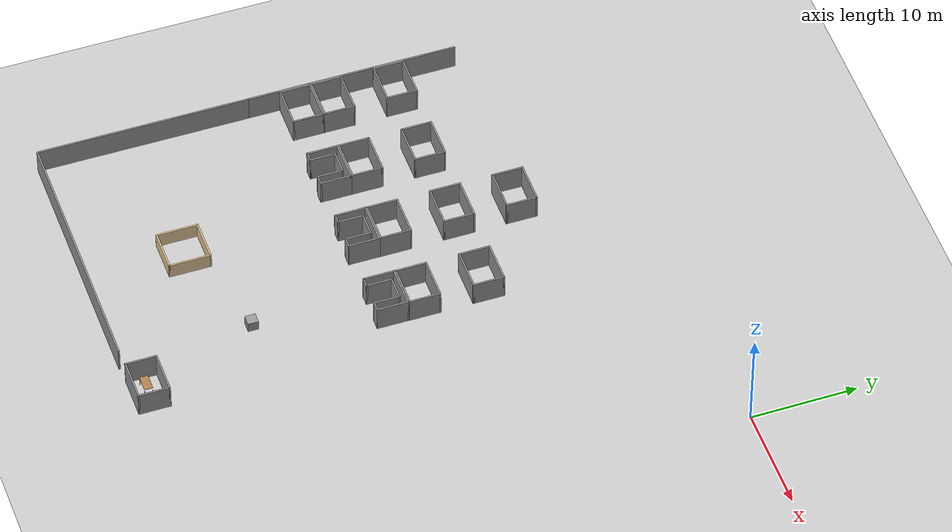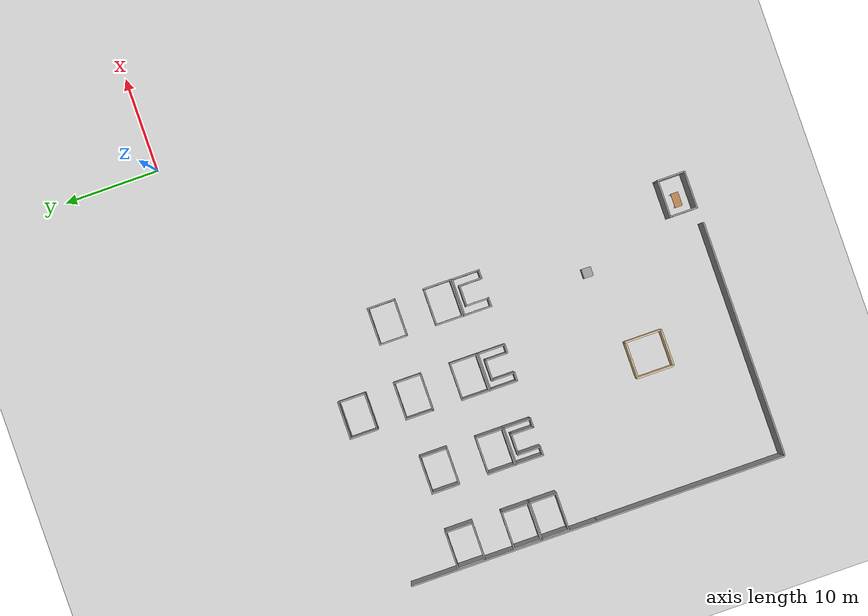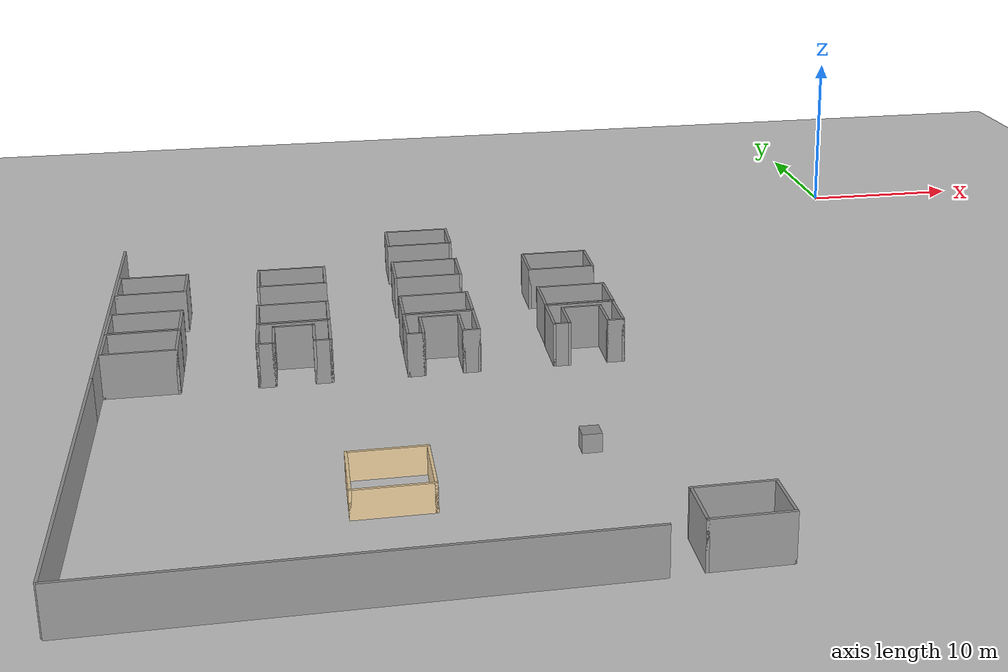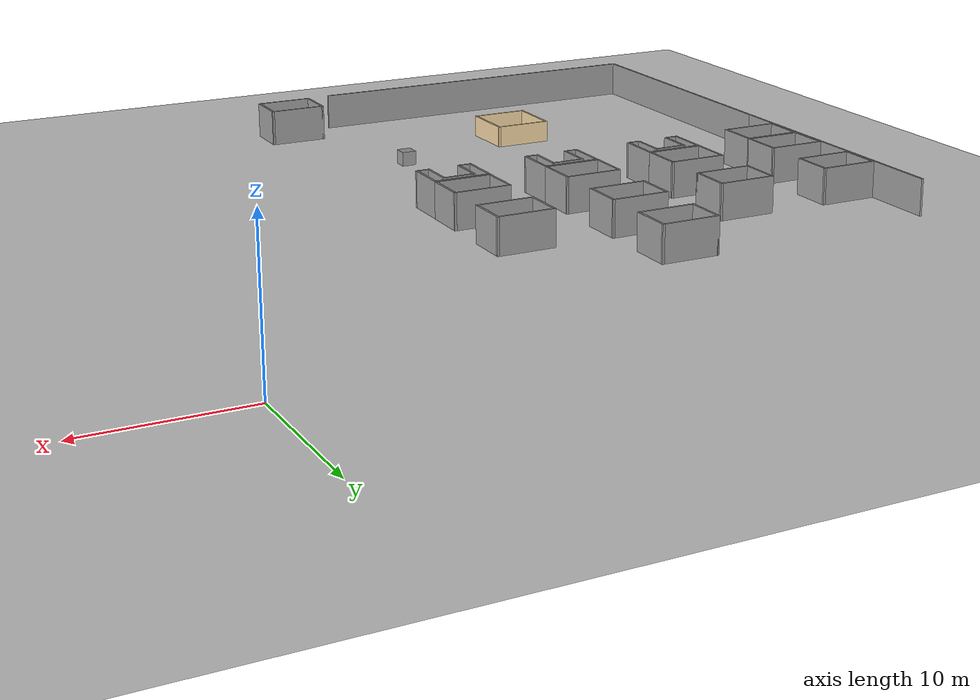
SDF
<sdf version="1.6">
 <world name="default">
  <model name="ground_plane">
   <static>1</static>
   <link name="link">
    <collision name="collision">
     <geometry><plane><normal>0 0 1</normal><size>105 105</size></plane></geometry>
     <surface>
      <contact><collide_bitmask>65535</collide_bitmask></contact>
      <friction><ode><mu>100</mu><mu2>50</mu2></ode></friction>
     </surface>
    </collision>
    <visual name="visual">
     <cast_shadows>0</cast_shadows>
     <geometry><plane><normal>0 0 1</normal><size>105 105</size></plane></geometry>
     <material>
      <script><uri>file://media/materials/scripts/gazebo.material</uri><name>Gazebo/Grey</name></script>
     </material>
    </visual>
   </link>
  </model>
  <model name="wall_v20m">
   <pose>-48.4198 -20.7165 0 0 -0 0</pose>
   <link name="Wall_35">
    <collision name="Wall_35_Collision">
     <geometry><box><size>20 0.15 2.5</size></box></geometry>
     <pose>0 0 1.25 0 -0 0</pose>
    </collision>
    <visual name="Wall_35_Visual">
     <pose>0 0 1.25 0 -0 0</pose>
     <geometry><box><size>20 0.15 2.5</size></box></geometry>
     <material>
      <script><uri>file://media/materials/scripts/gazebo.material</uri><name>Gazebo/Grey</name></script>
      <ambient>1 1 1 1</ambient>
     </material>
     <meta><layer>0</layer></meta>
    </visual>
    <pose>0 -0 0 0 -0 -1.5708</pose>
   </link>
   <static>1</static>
  </model>
  <model name="base3x4_26">
   <pose>-46.3516 -23.2162 0 0 -0 0</pose>
   <link name="Wall_18">
    <collision name="Wall_18_Collision">
     <geometry><box><size>3 0.15 2.5</size></box></geometry>
     <pose>0 0 1.25 0 -0 0</pose>
    </collision>
    <visual name="Wall_18_Visual">
     <pose>0 0 1.25 0 -0 0</pose>
     <geometry><box><size>3 0.15 2.5</size></box></geometry>
     <material>
      <script><uri>file://media/materials/scripts/gazebo.material</uri><name>Gazebo/Grey</name></script>
      <ambient>1 1 1 1</ambient>
     </material>
     <meta><layer>0</layer></meta>
    </visual>
    <pose>-1.925 -0 0 0 -0 -1.5708</pose>
   </link>
   <link name="Wall_19">
    <collision name="Wall_19_Collision">
     <geometry><box><size>4 0.15 2.5</size></box></geometry>
     <pose>0 0 1.25 0 -0 0</pose>
    </collision>
    <visual name="Wall_19_Visual">
     <pose>0 0 1.25 0 -0 0</pose>
     <geometry><box><size>4 0.15 2.5</size></box></geometry>
     <material>
      <script><uri>file://media/materials/scripts/gazebo.material</uri><name>Gazebo/Grey</name></script>
      <ambient>1 1 1 1</ambient>
     </material>
     <meta><layer>0</layer></meta>
    </visual>
    <pose>-0 -1.425 0 0 -0 0</pose>
   </link>
   <link name="Wall_20">
    <collision name="Wall_20_Collision">
     <geometry><box><size>3 0.15 2.5</size></box></geometry>
     <pose>0 0 1.25 0 -0 0</pose>
    </collision>
    <visual name="Wall_20_Visual">
     <pose>0 0 1.25 0 -0 0</pose>
     <geometry><box><size>3 0.15 2.5</size></box></geometry>
     <material>
      <script><uri>file://media/materials/scripts/gazebo.material</uri><name>Gazebo/Grey</name></script>
      <ambient>1 1 1 1</ambient>
     </material>
     <meta><layer>0</layer></meta>
    </visual>
    <pose>1.925 -0 0 0 -0 1.5708</pose>
   </link>
   <link name="Wall_21">
    <collision name="Wall_21_Collision">
     <geometry><box><size>4 0.15 2.5</size></box></geometry>
     <pose>0 0 1.25 0 -0 0</pose>
    </collision>
    <visual name="Wall_21_Visual">
     <pose>0 0 1.25 0 -0 0</pose>
     <geometry><box><size>4 0.15 2.5</size></box></geometry>
     <material>
      <script><uri>file://media/materials/scripts/gazebo.material</uri><name>Gazebo/Grey</name></script>
      <ambient>1 1 1 1</ambient>
     </material>
     <meta><layer>0</layer></meta>
    </visual>
    <pose>-0 1.425 0 0 -0 3.14159</pose>
   </link>
   <static>1</static>
  </model>
  <model name="base3x4_28">
   <pose>-46.3508 -17.215 0 0 -0 0</pose>
   <link name="Wall_18">
    <collision name="Wall_18_Collision">
     <geometry><box><size>3 0.15 2.5</size></box></geometry>
     <pose>0 0 1.25 0 -0 0</pose>
    </collision>
    <visual name="Wall_18_Visual">
     <pose>0 0 1.25 0 -0 0</pose>
     <geometry><box><size>3 0.15 2.5</size></box></geometry>
     <material>
      <script><uri>file://media/materials/scripts/gazebo.material</uri><name>Gazebo/Grey</name></script>
      <ambient>1 1 1 1</ambient>
     </material>
     <meta><layer>0</layer></meta>
    </visual>
    <pose>-1.925 -0 0 0 -0 -1.5708</pose>
   </link>
   <link name="Wall_19">
    <collision name="Wall_19_Collision">
     <geometry><box><size>4 0.15 2.5</size></box></geometry>
     <pose>0 0 1.25 0 -0 0</pose>
    </collision>
    <visual name="Wall_19_Visual">
     <pose>0 0 1.25 0 -0 0</pose>
     <geometry><box><size>4 0.15 2.5</size></box></geometry>
     <material>
      <script><uri>file://media/materials/scripts/gazebo.material</uri><name>Gazebo/Grey</name></script>
      <ambient>1 1 1 1</ambient>
     </material>
     <meta><layer>0</layer></meta>
    </visual>
    <pose>-0 -1.425 0 0 -0 0</pose>
   </link>
   <link name="Wall_20">
    <collision name="Wall_20_Collision">
     <geometry><box><size>3 0.15 2.5</size></box></geometry>
     <pose>0 0 1.25 0 -0 0</pose>
    </collision>
    <visual name="Wall_20_Visual">
     <pose>0 0 1.25 0 -0 0</pose>
     <geometry><box><size>3 0.15 2.5</size></box></geometry>
     <material>
      <script><uri>file://media/materials/scripts/gazebo.material</uri><name>Gazebo/Grey</name></script>
      <ambient>1 1 1 1</ambient>
     </material>
     <meta><layer>0</layer></meta>
    </visual>
    <pose>1.925 -0 0 0 -0 1.5708</pose>
   </link>
   <link name="Wall_21">
    <collision name="Wall_21_Collision">
     <geometry><box><size>4 0.15 2.5</size></box></geometry>
     <pose>0 0 1.25 0 -0 0</pose>
    </collision>
    <visual name="Wall_21_Visual">
     <pose>0 0 1.25 0 -0 0</pose>
     <geometry><box><size>4 0.15 2.5</size></box></geometry>
     <material>
      <script><uri>file://media/materials/scripts/gazebo.material</uri><name>Gazebo/Grey</name></script>
      <ambient>1 1 1 1</ambient>
     </material>
     <meta><layer>0</layer></meta>
    </visual>
    <pose>-0 1.425 0 0 -0 3.14159</pose>
   </link>
   <static>1</static>
  </model>
  <model name="base3x4_34">
   <pose>-38.3558 -23.2346 0 0 -0 0</pose>
   <link name="Wall_18">
    <collision name="Wall_18_Collision">
     <geometry><box><size>3 0.15 2.5</size></box></geometry>
     <pose>0 0 1.25 0 -0 0</pose>
    </collision>
    <visual name="Wall_18_Visual">
     <pose>0 0 1.25 0 -0 0</pose>
     <geometry><box><size>3 0.15 2.5</size></box></geometry>
     <material>
      <script><uri>file://media/materials/scripts/gazebo.material</uri><name>Gazebo/Grey</name></script>
      <ambient>1 1 1 1</ambient>
     </material>
     <meta><layer>0</layer></meta>
    </visual>
    <pose>-1.925 -0 0 0 -0 -1.5708</pose>
   </link>
   <link name="Wall_19">
    <collision name="Wall_19_Collision">
     <geometry><box><size>4 0.15 2.5</size></box></geometry>
     <pose>0 0 1.25 0 -0 0</pose>
    </collision>
    <visual name="Wall_19_Visual">
     <pose>0 0 1.25 0 -0 0</pose>
     <geometry><box><size>4 0.15 2.5</size></box></geometry>
     <material>
      <script><uri>file://media/materials/scripts/gazebo.material</uri><name>Gazebo/Grey</name></script>
      <ambient>1 1 1 1</ambient>
     </material>
     <meta><layer>0</layer></meta>
    </visual>
    <pose>-0 -1.425 0 0 -0 0</pose>
   </link>
   <link name="Wall_20">
    <collision name="Wall_20_Collision">
     <geometry><box><size>3 0.15 2.5</size></box></geometry>
     <pose>0 0 1.25 0 -0 0</pose>
    </collision>
    <visual name="Wall_20_Visual">
     <pose>0 0 1.25 0 -0 0</pose>
     <geometry><box><size>3 0.15 2.5</size></box></geometry>
     <material>
      <script><uri>file://media/materials/scripts/gazebo.material</uri><name>Gazebo/Grey</name></script>
      <ambient>1 1 1 1</ambient>
     </material>
     <meta><layer>0</layer></meta>
    </visual>
    <pose>1.925 -0 0 0 -0 1.5708</pose>
   </link>
   <link name="Wall_21">
    <collision name="Wall_21_Collision">
     <geometry><box><size>4 0.15 2.5</size></box></geometry>
     <pose>0 0 1.25 0 -0 0</pose>
    </collision>
    <visual name="Wall_21_Visual">
     <pose>0 0 1.25 0 -0 0</pose>
     <geometry><box><size>4 0.15 2.5</size></box></geometry>
     <material>
      <script><uri>file://media/materials/scripts/gazebo.material</uri><name>Gazebo/Grey</name></script>
      <ambient>1 1 1 1</ambient>
     </material>
     <meta><layer>0</layer></meta>
    </visual>
    <pose>-0 1.425 0 0 -0 3.14159</pose>
   </link>
   <static>1</static>
  </model>
  <model name="base3x4_36">
   <pose>-38.357 -17.2543 0 0 -0 0</pose>
   <link name="Wall_18">
    <collision name="Wall_18_Collision">
     <geometry><box><size>3 0.15 2.5</size></box></geometry>
     <pose>0 0 1.25 0 -0 0</pose>
    </collision>
    <visual name="Wall_18_Visual">
     <pose>0 0 1.25 0 -0 0</pose>
     <geometry><box><size>3 0.15 2.5</size></box></geometry>
     <material>
      <script><uri>file://media/materials/scripts/gazebo.material</uri><name>Gazebo/Grey</name></script>
      <ambient>1 1 1 1</ambient>
     </material>
     <meta><layer>0</layer></meta>
    </visual>
    <pose>-1.925 -0 0 0 -0 -1.5708</pose>
   </link>
   <link name="Wall_19">
    <collision name="Wall_19_Collision">
     <geometry><box><size>4 0.15 2.5</size></box></geometry>
     <pose>0 0 1.25 0 -0 0</pose>
    </collision>
    <visual name="Wall_19_Visual">
     <pose>0 0 1.25 0 -0 0</pose>
     <geometry><box><size>4 0.15 2.5</size></box></geometry>
     <material>
      <script><uri>file://media/materials/scripts/gazebo.material</uri><name>Gazebo/Grey</name></script>
      <ambient>1 1 1 1</ambient>
     </material>
     <meta><layer>0</layer></meta>
    </visual>
    <pose>-0 -1.425 0 0 -0 0</pose>
   </link>
   <link name="Wall_20">
    <collision name="Wall_20_Collision">
     <geometry><box><size>3 0.15 2.5</size></box></geometry>
     <pose>0 0 1.25 0 -0 0</pose>
    </collision>
    <visual name="Wall_20_Visual">
     <pose>0 0 1.25 0 -0 0</pose>
     <geometry><box><size>3 0.15 2.5</size></box></geometry>
     <material>
      <script><uri>file://media/materials/scripts/gazebo.material</uri><name>Gazebo/Grey</name></script>
      <ambient>1 1 1 1</ambient>
     </material>
     <meta><layer>0</layer></meta>
    </visual>
    <pose>1.925 -0 0 0 -0 1.5708</pose>
   </link>
   <link name="Wall_21">
    <collision name="Wall_21_Collision">
     <geometry><box><size>4 0.15 2.5</size></box></geometry>
     <pose>0 0 1.25 0 -0 0</pose>
    </collision>
    <visual name="Wall_21_Visual">
     <pose>0 0 1.25 0 -0 0</pose>
     <geometry><box><size>4 0.15 2.5</size></box></geometry>
     <material>
      <script><uri>file://media/materials/scripts/gazebo.material</uri><name>Gazebo/Grey</name></script>
      <ambient>1 1 1 1</ambient>
     </material>
     <meta><layer>0</layer></meta>
    </visual>
    <pose>-0 1.425 0 0 -0 3.14159</pose>
   </link>
   <static>1</static>
  </model>
  <model name="base3x4_31">
   <pose>-30.4046 -23.2308 0 0 -0 0</pose>
   <link name="Wall_18">
    <collision name="Wall_18_Collision">
     <geometry><box><size>3 0.15 2.5</size></box></geometry>
     <pose>0 0 1.25 0 -0 0</pose>
    </collision>
    <visual name="Wall_18_Visual">
     <pose>0 0 1.25 0 -0 0</pose>
     <geometry><box><size>3 0.15 2.5</size></box></geometry>
     <material>
      <script><uri>file://media/materials/scripts/gazebo.material</uri><name>Gazebo/Grey</name></script>
      <ambient>1 1 1 1</ambient>
     </material>
     <meta><layer>0</layer></meta>
    </visual>
    <pose>-1.925 -0 0 0 -0 -1.5708</pose>
   </link>
   <link name="Wall_19">
    <collision name="Wall_19_Collision">
     <geometry><box><size>4 0.15 2.5</size></box></geometry>
     <pose>0 0 1.25 0 -0 0</pose>
    </collision>
    <visual name="Wall_19_Visual">
     <pose>0 0 1.25 0 -0 0</pose>
     <geometry><box><size>4 0.15 2.5</size></box></geometry>
     <material>
      <script><uri>file://media/materials/scripts/gazebo.material</uri><name>Gazebo/Grey</name></script>
      <ambient>1 1 1 1</ambient>
     </material>
     <meta><layer>0</layer></meta>
    </visual>
    <pose>-0 -1.425 0 0 -0 0</pose>
   </link>
   <link name="Wall_20">
    <collision name="Wall_20_Collision">
     <geometry><box><size>3 0.15 2.5</size></box></geometry>
     <pose>0 0 1.25 0 -0 0</pose>
    </collision>
    <visual name="Wall_20_Visual">
     <pose>0 0 1.25 0 -0 0</pose>
     <geometry><box><size>3 0.15 2.5</size></box></geometry>
     <material>
      <script><uri>file://media/materials/scripts/gazebo.material</uri><name>Gazebo/Grey</name></script>
      <ambient>1 1 1 1</ambient>
     </material>
     <meta><layer>0</layer></meta>
    </visual>
    <pose>1.925 -0 0 0 -0 1.5708</pose>
   </link>
   <link name="Wall_21">
    <collision name="Wall_21_Collision">
     <geometry><box><size>4 0.15 2.5</size></box></geometry>
     <pose>0 0 1.25 0 -0 0</pose>
    </collision>
    <visual name="Wall_21_Visual">
     <pose>0 0 1.25 0 -0 0</pose>
     <geometry><box><size>4 0.15 2.5</size></box></geometry>
     <material>
      <script><uri>file://media/materials/scripts/gazebo.material</uri><name>Gazebo/Grey</name></script>
      <ambient>1 1 1 1</ambient>
     </material>
     <meta><layer>0</layer></meta>
    </visual>
    <pose>-0 1.425 0 0 -0 3.14159</pose>
   </link>
   <static>1</static>
  </model>
  <model name="base3x4_33">
   <pose>-30.4092 -17.2319 0 0 -0 0</pose>
   <link name="Wall_18">
    <collision name="Wall_18_Collision">
     <geometry><box><size>3 0.15 2.5</size></box></geometry>
     <pose>0 0 1.25 0 -0 0</pose>
    </collision>
    <visual name="Wall_18_Visual">
     <pose>0 0 1.25 0 -0 0</pose>
     <geometry><box><size>3 0.15 2.5</size></box></geometry>
     <material>
      <script><uri>file://media/materials/scripts/gazebo.material</uri><name>Gazebo/Grey</name></script>
      <ambient>1 1 1 1</ambient>
     </material>
     <meta><layer>0</layer></meta>
    </visual>
    <pose>-1.925 -0 0 0 -0 -1.5708</pose>
   </link>
   <link name="Wall_19">
    <collision name="Wall_19_Collision">
     <geometry><box><size>4 0.15 2.5</size></box></geometry>
     <pose>0 0 1.25 0 -0 0</pose>
    </collision>
    <visual name="Wall_19_Visual">
     <pose>0 0 1.25 0 -0 0</pose>
     <geometry><box><size>4 0.15 2.5</size></box></geometry>
     <material>
      <script><uri>file://media/materials/scripts/gazebo.material</uri><name>Gazebo/Grey</name></script>
      <ambient>1 1 1 1</ambient>
     </material>
     <meta><layer>0</layer></meta>
    </visual>
    <pose>-0 -1.425 0 0 -0 0</pose>
   </link>
   <link name="Wall_20">
    <collision name="Wall_20_Collision">
     <geometry><box><size>3 0.15 2.5</size></box></geometry>
     <pose>0 0 1.25 0 -0 0</pose>
    </collision>
    <visual name="Wall_20_Visual">
     <pose>0 0 1.25 0 -0 0</pose>
     <geometry><box><size>3 0.15 2.5</size></box></geometry>
     <material>
      <script><uri>file://media/materials/scripts/gazebo.material</uri><name>Gazebo/Grey</name></script>
      <ambient>1 1 1 1</ambient>
     </material>
     <meta><layer>0</layer></meta>
    </visual>
    <pose>1.925 -0 0 0 -0 1.5708</pose>
   </link>
   <link name="Wall_21">
    <collision name="Wall_21_Collision">
     <geometry><box><size>4 0.15 2.5</size></box></geometry>
     <pose>0 0 1.25 0 -0 0</pose>
    </collision>
    <visual name="Wall_21_Visual">
     <pose>0 0 1.25 0 -0 0</pose>
     <geometry><box><size>4 0.15 2.5</size></box></geometry>
     <material>
      <script><uri>file://media/materials/scripts/gazebo.material</uri><name>Gazebo/Grey</name></script>
      <ambient>1 1 1 1</ambient>
     </material>
     <meta><layer>0</layer></meta>
    </visual>
    <pose>-0 1.425 0 0 -0 3.14159</pose>
   </link>
   <static>1</static>
  </model>
  <model name="base3x4_0">
   <pose>-30.4026 -11.2715 0 0 -0 0</pose>
   <link name="Wall_18">
    <collision name="Wall_18_Collision">
     <geometry><box><size>3 0.15 2.5</size></box></geometry>
     <pose>0 0 1.25 0 -0 0</pose>
    </collision>
    <visual name="Wall_18_Visual">
     <pose>0 0 1.25 0 -0 0</pose>
     <geometry><box><size>3 0.15 2.5</size></box></geometry>
     <material>
      <script><uri>file://media/materials/scripts/gazebo.material</uri><name>Gazebo/Grey</name></script>
      <ambient>1 1 1 1</ambient>
     </material>
     <meta><layer>0</layer></meta>
    </visual>
    <pose>-1.925 -0 0 0 -0 -1.5708</pose>
   </link>
   <link name="Wall_19">
    <collision name="Wall_19_Collision">
     <geometry><box><size>4 0.15 2.5</size></box></geometry>
     <pose>0 0 1.25 0 -0 0</pose>
    </collision>
    <visual name="Wall_19_Visual">
     <pose>0 0 1.25 0 -0 0</pose>
     <geometry><box><size>4 0.15 2.5</size></box></geometry>
     <material>
      <script><uri>file://media/materials/scripts/gazebo.material</uri><name>Gazebo/Grey</name></script>
      <ambient>1 1 1 1</ambient>
     </material>
     <meta><layer>0</layer></meta>
    </visual>
    <pose>-0 -1.425 0 0 -0 0</pose>
   </link>
   <link name="Wall_20">
    <collision name="Wall_20_Collision">
     <geometry><box><size>3 0.15 2.5</size></box></geometry>
     <pose>0 0 1.25 0 -0 0</pose>
    </collision>
    <visual name="Wall_20_Visual">
     <pose>0 0 1.25 0 -0 0</pose>
     <geometry><box><size>3 0.15 2.5</size></box></geometry>
     <material>
      <script><uri>file://media/materials/scripts/gazebo.material</uri><name>Gazebo/Grey</name></script>
      <ambient>1 1 1 1</ambient>
     </material>
     <meta><layer>0</layer></meta>
    </visual>
    <pose>1.925 -0 0 0 -0 1.5708</pose>
   </link>
   <link name="Wall_21">
    <collision name="Wall_21_Collision">
     <geometry><box><size>4 0.15 2.5</size></box></geometry>
     <pose>0 0 1.25 0 -0 0</pose>
    </collision>
    <visual name="Wall_21_Visual">
     <pose>0 0 1.25 0 -0 0</pose>
     <geometry><box><size>4 0.15 2.5</size></box></geometry>
     <material>
      <script><uri>file://media/materials/scripts/gazebo.material</uri><name>Gazebo/Grey</name></script>
      <ambient>1 1 1 1</ambient>
     </material>
     <meta><layer>0</layer></meta>
    </visual>
    <pose>-0 1.425 0 0 -0 3.14159</pose>
   </link>
   <static>1</static>
  </model>
  <model name="unit_box_2">
   <pose>-24.3587 -38.1586 0.5 0 -0 0</pose>
   <link name="link">
    <inertial>
     <mass>1</mass>
     <inertia>
      <ixx>0.166667</ixx>
      <ixy>0</ixy>
      <ixz>0</ixz>
      <iyy>0.166667</iyy>
      <iyz>0</iyz>
      <izz>0.166667</izz>
     </inertia>
    </inertial>
    <collision name="collision"><geometry><box><size>1 1 1</size></box></geometry></collision>
    <visual name="visual">
     <geometry><box><size>1 1 1</size></box></geometry>
     <material>
      <script><name>Gazebo/Grey</name><uri>file://media/materials/scripts/gazebo.material</uri></script>
     </material>
    </visual>
   </link>
  </model>
  <model name="base3x4_53">
   <pose>-22.3998 -23.2187 0 0 -0 0</pose>
   <link name="Wall_18">
    <collision name="Wall_18_Collision">
     <geometry><box><size>3 0.15 2.5</size></box></geometry>
     <pose>0 0 1.25 0 -0 0</pose>
    </collision>
    <visual name="Wall_18_Visual">
     <pose>0 0 1.25 0 -0 0</pose>
     <geometry><box><size>3 0.15 2.5</size></box></geometry>
     <material>
      <script><uri>file://media/materials/scripts/gazebo.material</uri><name>Gazebo/Grey</name></script>
      <ambient>1 1 1 1</ambient>
     </material>
     <meta><layer>0</layer></meta>
    </visual>
    <pose>-1.925 -0 0 0 -0 -1.5708</pose>
   </link>
   <link name="Wall_19">
    <collision name="Wall_19_Collision">
     <geometry><box><size>4 0.15 2.5</size></box></geometry>
     <pose>0 0 1.25 0 -0 0</pose>
    </collision>
    <visual name="Wall_19_Visual">
     <pose>0 0 1.25 0 -0 0</pose>
     <geometry><box><size>4 0.15 2.5</size></box></geometry>
     <material>
      <script><uri>file://media/materials/scripts/gazebo.material</uri><name>Gazebo/Grey</name></script>
      <ambient>1 1 1 1</ambient>
     </material>
     <meta><layer>0</layer></meta>
    </visual>
    <pose>-0 -1.425 0 0 -0 0</pose>
   </link>
   <link name="Wall_20">
    <collision name="Wall_20_Collision">
     <geometry><box><size>3 0.15 2.5</size></box></geometry>
     <pose>0 0 1.25 0 -0 0</pose>
    </collision>
    <visual name="Wall_20_Visual">
     <pose>0 0 1.25 0 -0 0</pose>
     <geometry><box><size>3 0.15 2.5</size></box></geometry>
     <material>
      <script><uri>file://media/materials/scripts/gazebo.material</uri><name>Gazebo/Grey</name></script>
      <ambient>1 1 1 1</ambient>
     </material>
     <meta><layer>0</layer></meta>
    </visual>
    <pose>1.925 -0 0 0 -0 1.5708</pose>
   </link>
   <link name="Wall_21">
    <collision name="Wall_21_Collision">
     <geometry><box><size>4 0.15 2.5</size></box></geometry>
     <pose>0 0 1.25 0 -0 0</pose>
    </collision>
    <visual name="Wall_21_Visual">
     <pose>0 0 1.25 0 -0 0</pose>
     <geometry><box><size>4 0.15 2.5</size></box></geometry>
     <material>
      <script><uri>file://media/materials/scripts/gazebo.material</uri><name>Gazebo/Grey</name></script>
      <ambient>1 1 1 1</ambient>
     </material>
     <meta><layer>0</layer></meta>
    </visual>
    <pose>-0 1.425 0 0 -0 3.14159</pose>
   </link>
   <static>1</static>
  </model>
  <model name="base3x4_61">
   <pose>-22.4078 -17.2215 0 0 -0 0</pose>
   <link name="Wall_18">
    <collision name="Wall_18_Collision">
     <geometry><box><size>3 0.15 2.5</size></box></geometry>
     <pose>0 0 1.25 0 -0 0</pose>
    </collision>
    <visual name="Wall_18_Visual">
     <pose>0 0 1.25 0 -0 0</pose>
     <geometry><box><size>3 0.15 2.5</size></box></geometry>
     <material>
      <script><uri>file://media/materials/scripts/gazebo.material</uri><name>Gazebo/Grey</name></script>
      <ambient>1 1 1 1</ambient>
     </material>
     <meta><layer>0</layer></meta>
    </visual>
    <pose>-1.925 -0 0 0 -0 -1.5708</pose>
   </link>
   <link name="Wall_19">
    <collision name="Wall_19_Collision">
     <geometry><box><size>4 0.15 2.5</size></box></geometry>
     <pose>0 0 1.25 0 -0 0</pose>
    </collision>
    <visual name="Wall_19_Visual">
     <pose>0 0 1.25 0 -0 0</pose>
     <geometry><box><size>4 0.15 2.5</size></box></geometry>
     <material>
      <script><uri>file://media/materials/scripts/gazebo.material</uri><name>Gazebo/Grey</name></script>
      <ambient>1 1 1 1</ambient>
     </material>
     <meta><layer>0</layer></meta>
    </visual>
    <pose>-0 -1.425 0 0 -0 0</pose>
   </link>
   <link name="Wall_20">
    <collision name="Wall_20_Collision">
     <geometry><box><size>3 0.15 2.5</size></box></geometry>
     <pose>0 0 1.25 0 -0 0</pose>
    </collision>
    <visual name="Wall_20_Visual">
     <pose>0 0 1.25 0 -0 0</pose>
     <geometry><box><size>3 0.15 2.5</size></box></geometry>
     <material>
      <script><uri>file://media/materials/scripts/gazebo.material</uri><name>Gazebo/Grey</name></script>
      <ambient>1 1 1 1</ambient>
     </material>
     <meta><layer>0</layer></meta>
    </visual>
    <pose>1.925 -0 0 0 -0 1.5708</pose>
   </link>
   <link name="Wall_21">
    <collision name="Wall_21_Collision">
     <geometry><box><size>4 0.15 2.5</size></box></geometry>
     <pose>0 0 1.25 0 -0 0</pose>
    </collision>
    <visual name="Wall_21_Visual">
     <pose>0 0 1.25 0 -0 0</pose>
     <geometry><box><size>4 0.15 2.5</size></box></geometry>
     <material>
      <script><uri>file://media/materials/scripts/gazebo.material</uri><name>Gazebo/Grey</name></script>
      <ambient>1 1 1 1</ambient>
     </material>
     <meta><layer>0</layer></meta>
    </visual>
    <pose>-0 1.425 0 0 -0 3.14159</pose>
   </link>
   <static>1</static>
  </model>
  <model name="base3x4_37">
   <pose>-19.8731 -49.167 0 0 -0 0</pose>
   <link name="Wall_18">
    <collision name="Wall_18_Collision">
     <geometry><box><size>3 0.15 2.5</size></box></geometry>
     <pose>0 0 1.25 0 -0 0</pose>
    </collision>
    <visual name="Wall_18_Visual">
     <pose>0 0 1.25 0 -0 0</pose>
     <geometry><box><size>3 0.15 2.5</size></box></geometry>
     <material>
      <script><uri>file://media/materials/scripts/gazebo.material</uri><name>Gazebo/Grey</name></script>
      <ambient>1 1 1 1</ambient>
     </material>
     <meta><layer>0</layer></meta>
    </visual>
    <pose>-1.925 -0 0 0 -0 -1.5708</pose>
   </link>
   <link name="Wall_19">
    <collision name="Wall_19_Collision">
     <geometry><box><size>4 0.15 2.5</size></box></geometry>
     <pose>0 0 1.25 0 -0 0</pose>
    </collision>
    <visual name="Wall_19_Visual">
     <pose>0 0 1.25 0 -0 0</pose>
     <geometry><box><size>4 0.15 2.5</size></box></geometry>
     <material>
      <script><uri>file://media/materials/scripts/gazebo.material</uri><name>Gazebo/Grey</name></script>
      <ambient>1 1 1 1</ambient>
     </material>
     <meta><layer>0</layer></meta>
    </visual>
    <pose>-0 -1.425 0 0 -0 0</pose>
   </link>
   <link name="Wall_20">
    <collision name="Wall_20_Collision">
     <geometry><box><size>3 0.15 2.5</size></box></geometry>
     <pose>0 0 1.25 0 -0 0</pose>
    </collision>
    <visual name="Wall_20_Visual">
     <pose>0 0 1.25 0 -0 0</pose>
     <geometry><box><size>3 0.15 2.5</size></box></geometry>
     <material>
      <script><uri>file://media/materials/scripts/gazebo.material</uri><name>Gazebo/Grey</name></script>
      <ambient>1 1 1 1</ambient>
     </material>
     <meta><layer>0</layer></meta>
    </visual>
    <pose>1.925 -0 0 0 -0 1.5708</pose>
   </link>
   <link name="Wall_21">
    <collision name="Wall_21_Collision">
     <geometry><box><size>4 0.15 2.5</size></box></geometry>
     <pose>0 0 1.25 0 -0 0</pose>
    </collision>
    <visual name="Wall_21_Visual">
     <pose>0 0 1.25 0 -0 0</pose>
     <geometry><box><size>4 0.15 2.5</size></box></geometry>
     <material>
      <script><uri>file://media/materials/scripts/gazebo.material</uri><name>Gazebo/Grey</name></script>
      <ambient>1 1 1 1</ambient>
     </material>
     <meta><layer>0</layer></meta>
    </visual>
    <pose>-0 1.425 0 0 -0 3.14159</pose>
   </link>
   <static>1</static>
  </model>
  <model name="wall_25m_1">
   <pose>-35.9126 -50.7151 0 0 -0 0</pose>
   <link name="Wall_28">
    <collision name="Wall_28_Collision">
     <geometry><box><size>25 0.15 2.5</size></box></geometry>
     <pose>0 0 1.25 0 -0 0</pose>
    </collision>
    <visual name="Wall_28_Visual">
     <pose>0 0 1.25 0 -0 0</pose>
     <geometry><box><size>25 0.15 2.5</size></box></geometry>
     <material>
      <script><uri>file://media/materials/scripts/gazebo.material</uri><name>Gazebo/Grey</name></script>
      <ambient>1 1 1 1</ambient>
     </material>
     <meta><layer>0</layer></meta>
    </visual>
   </link>
   <static>1</static>
  </model>
  <model name="table_14">
   <static>1</static>
   <link name="link">
    <collision name="surface">
     <pose>0 0 1 0 -0 0</pose>
     <geometry><box><size>1.5 0.8 0.03</size></box></geometry>
     <surface><friction><ode><mu>0.6</mu><mu2>0.6</mu2></ode></friction></surface>
    </collision>
    <visual name="visual1">
     <pose>0 0 1 0 -0 0</pose>
     <geometry><box><size>1.5 0.8 0.03</size></box></geometry>
     <material>
      <script><uri>file://media/materials/scripts/gazebo.material</uri><name>Gazebo/Wood</name></script>
     </material>
    </visual>
    <collision name="front_left_leg">
     <pose>0.68 0.38 0.5 0 -0 0</pose>
     <geometry><cylinder><radius>0.02</radius><length>1</length></cylinder></geometry>
    </collision>
    <visual name="front_left_leg">
     <pose>0.68 0.38 0.5 0 -0 0</pose>
     <geometry><cylinder><radius>0.02</radius><length>1</length></cylinder></geometry>
     <material>
      <script><uri>file://media/materials/scripts/gazebo.material</uri><name>Gazebo/Grey</name></script>
     </material>
    </visual>
    <collision name="front_right_leg">
     <pose>0.68 -0.38 0.5 0 -0 0</pose>
     <geometry><cylinder><radius>0.02</radius><length>1</length></cylinder></geometry>
    </collision>
    <visual name="front_right_leg">
     <pose>0.68 -0.38 0.5 0 -0 0</pose>
     <geometry><cylinder><radius>0.02</radius><length>1</length></cylinder></geometry>
     <material>
      <script><uri>file://media/materials/scripts/gazebo.material</uri><name>Gazebo/Grey</name></script>
     </material>
    </visual>
    <collision name="back_right_leg">
     <pose>-0.68 -0.38 0.5 0 -0 0</pose>
     <geometry><cylinder><radius>0.02</radius><length>1</length></cylinder></geometry>
    </collision>
    <visual name="back_right_leg">
     <pose>-0.68 -0.38 0.5 0 -0 0</pose>
     <geometry><cylinder><radius>0.02</radius><length>1</length></cylinder></geometry>
     <material>
      <script><uri>file://media/materials/scripts/gazebo.material</uri><name>Gazebo/Grey</name></script>
     </material>
    </visual>
    <collision name="back_left_leg">
     <pose>-0.68 0.38 0.5 0 -0 0</pose>
     <geometry><cylinder><radius>0.02</radius><length>1</length></cylinder></geometry>
    </collision>
    <visual name="back_left_leg">
     <pose>-0.68 0.38 0.5 0 -0 0</pose>
     <geometry><cylinder><radius>0.02</radius><length>1</length></cylinder></geometry>
     <material>
      <script><uri>file://media/materials/scripts/gazebo.material</uri><name>Gazebo/Grey</name></script>
     </material>
    </visual>
   </link>
   <pose>-20.3507 -49.1946 0 0 -0 0</pose>
  </model>
  <model name="wall_v20m_7">
   <pose>-48.4151 -40.6667 0 0 -0 0</pose>
   <link name="Wall_35">
    <collision name="Wall_35_Collision">
     <geometry><box><size>20 0.15 2.5</size></box></geometry>
     <pose>0 0 1.25 0 -0 0</pose>
    </collision>
    <visual name="Wall_35_Visual">
     <pose>0 0 1.25 0 -0 0</pose>
     <geometry><box><size>20 0.15 2.5</size></box></geometry>
     <material>
      <script><uri>file://media/materials/scripts/gazebo.material</uri><name>Gazebo/Grey</name></script>
      <ambient>1 1 1 1</ambient>
     </material>
     <meta><layer>0</layer></meta>
    </visual>
    <pose>0 -0 0 0 -0 -1.5708</pose>
   </link>
   <static>1</static>
  </model>
  <model name="box4x4x1.5_0">
   <pose>-34.2755 -41.3514 0 0 -0 0</pose>
   <link name="Wall_5">
    <collision name="Wall_5_Collision">
     <geometry><box><size>4 0.15 1.5</size></box></geometry>
     <pose>0 0 0.75 0 -0 0</pose>
    </collision>
    <visual name="Wall_5_Visual">
     <pose>0 0 0.75 0 -0 0</pose>
     <geometry><box><size>4 0.15 1.5</size></box></geometry>
     <material>
      <script><uri>file://media/materials/scripts/gazebo.material</uri><name>Gazebo/Grey</name></script>
      <ambient>0.921569 0.807843 0.615686 1</ambient>
     </material>
     <meta><layer>0</layer></meta>
    </visual>
    <pose>-1.925 -0 0 0 -0 -1.5708</pose>
   </link>
   <link name="Wall_6">
    <collision name="Wall_6_Collision">
     <geometry><box><size>4 0.15 1.5</size></box></geometry>
     <pose>0 0 0.75 0 -0 0</pose>
    </collision>
    <visual name="Wall_6_Visual">
     <pose>0 0 0.75 0 -0 0</pose>
     <geometry><box><size>4 0.15 1.5</size></box></geometry>
     <material>
      <script><uri>file://media/materials/scripts/gazebo.material</uri><name>Gazebo/Grey</name></script>
      <ambient>0.921569 0.807843 0.615686 1</ambient>
     </material>
     <meta><layer>0</layer></meta>
    </visual>
    <pose>0 -1.925 0 0 -0 0</pose>
   </link>
   <link name="Wall_7">
    <collision name="Wall_7_Collision">
     <geometry><box><size>4 0.15 1.5</size></box></geometry>
     <pose>0 0 0.75 0 -0 0</pose>
    </collision>
    <visual name="Wall_7_Visual">
     <pose>0 0 0.75 0 -0 0</pose>
     <geometry><box><size>4 0.15 1.5</size></box></geometry>
     <material>
      <script><uri>file://media/materials/scripts/gazebo.material</uri><name>Gazebo/Grey</name></script>
      <ambient>0.921569 0.807843 0.615686 1</ambient>
     </material>
     <meta><layer>0</layer></meta>
    </visual>
    <pose>1.925 -0 0 0 -0 1.5708</pose>
   </link>
   <link name="Wall_8">
    <collision name="Wall_8_Collision">
     <geometry><box><size>4 0.15 1.5</size></box></geometry>
     <pose>0 0 0.75 0 -0 0</pose>
    </collision>
    <visual name="Wall_8_Visual">
     <pose>0 0 0.75 0 -0 0</pose>
     <geometry><box><size>4 0.15 1.5</size></box></geometry>
     <material>
      <script><uri>file://media/materials/scripts/gazebo.material</uri><name>Gazebo/Grey</name></script>
      <ambient>0.921569 0.807843 0.615686 1</ambient>
     </material>
     <meta><layer>0</layer></meta>
    </visual>
    <pose>0 1.925 0 0 -0 3.14159</pose>
   </link>
   <static>1</static>
  </model>
  <model name="base3x4">
   <pose>-46.3496 -26.2095 0 0 -0 0</pose>
   <link name="Wall_18">
    <collision name="Wall_18_Collision">
     <geometry><box><size>3 0.15 2.5</size></box></geometry>
     <pose>0 0 1.25 0 -0 0</pose>
    </collision>
    <visual name="Wall_18_Visual">
     <pose>0 0 1.25 0 -0 0</pose>
     <geometry><box><size>3 0.15 2.5</size></box></geometry>
     <material>
      <script><uri>file://media/materials/scripts/gazebo.material</uri><name>Gazebo/Grey</name></script>
      <ambient>1 1 1 1</ambient>
     </material>
     <meta><layer>0</layer></meta>
    </visual>
    <pose>-1.925 -0 0 0 -0 -1.5708</pose>
   </link>
   <link name="Wall_19">
    <collision name="Wall_19_Collision">
     <geometry><box><size>4 0.15 2.5</size></box></geometry>
     <pose>0 0 1.25 0 -0 0</pose>
    </collision>
    <visual name="Wall_19_Visual">
     <pose>0 0 1.25 0 -0 0</pose>
     <geometry><box><size>4 0.15 2.5</size></box></geometry>
     <material>
      <script><uri>file://media/materials/scripts/gazebo.material</uri><name>Gazebo/Grey</name></script>
      <ambient>1 1 1 1</ambient>
     </material>
     <meta><layer>0</layer></meta>
    </visual>
    <pose>-0 -1.425 0 0 -0 0</pose>
   </link>
   <link name="Wall_20">
    <collision name="Wall_20_Collision">
     <geometry><box><size>3 0.15 2.5</size></box></geometry>
     <pose>0 0 1.25 0 -0 0</pose>
    </collision>
    <visual name="Wall_20_Visual">
     <pose>0 0 1.25 0 -0 0</pose>
     <geometry><box><size>3 0.15 2.5</size></box></geometry>
     <material>
      <script><uri>file://media/materials/scripts/gazebo.material</uri><name>Gazebo/Grey</name></script>
      <ambient>1 1 1 1</ambient>
     </material>
     <meta><layer>0</layer></meta>
    </visual>
    <pose>1.925 -0 0 0 -0 1.5708</pose>
   </link>
   <link name="Wall_21">
    <collision name="Wall_21_Collision">
     <geometry><box><size>4 0.15 2.5</size></box></geometry>
     <pose>0 0 1.25 0 -0 0</pose>
    </collision>
    <visual name="Wall_21_Visual">
     <pose>0 0 1.25 0 -0 0</pose>
     <geometry><box><size>4 0.15 2.5</size></box></geometry>
     <material>
      <script><uri>file://media/materials/scripts/gazebo.material</uri><name>Gazebo/Grey</name></script>
      <ambient>1 1 1 1</ambient>
     </material>
     <meta><layer>0</layer></meta>
    </visual>
    <pose>-0 1.425 0 0 -0 3.14159</pose>
   </link>
   <static>1</static>
  </model>
  <model name="box_u_v4X3X2.5_0">
   <pose>-22.4236 -26.2361 0 0 -0 0</pose>
   <link name="Wall_30">
    <collision name="Wall_30_Collision">
     <geometry><box><size>3 0.15 2.5</size></box></geometry>
     <pose>0 0 1.25 0 -0 0</pose>
    </collision>
    <visual name="Wall_30_Visual">
     <pose>0 0 1.25 0 -0 0</pose>
     <geometry><box><size>3 0.15 2.5</size></box></geometry>
     <material>
      <script><uri>file://media/materials/scripts/gazebo.material</uri><name>Gazebo/Grey</name></script>
      <ambient>1 1 1 1</ambient>
     </material>
     <meta><layer>0</layer></meta>
    </visual>
    <pose>-1.925 0 0 0 -0 -1.5708</pose>
   </link>
   <link name="Wall_32">
    <collision name="Wall_32_Collision">
     <geometry><box><size>4 0.15 2.5</size></box></geometry>
     <pose>0 0 1.25 0 -0 0</pose>
    </collision>
    <visual name="Wall_32_Visual">
     <pose>0 0 1.25 0 -0 0</pose>
     <geometry><box><size>4 0.15 2.5</size></box></geometry>
     <material>
      <script><uri>file://media/materials/scripts/gazebo.material</uri><name>Gazebo/Grey</name></script>
      <ambient>1 1 1 1</ambient>
     </material>
     <meta><layer>0</layer></meta>
    </visual>
    <pose>0 1.425 0 0 -0 0</pose>
   </link>
   <link name="Wall_33">
    <collision name="Wall_33_Collision">
     <geometry><box><size>3 0.15 2.5</size></box></geometry>
     <pose>0 0 1.25 0 -0 0</pose>
    </collision>
    <visual name="Wall_33_Visual">
     <pose>0 0 1.25 0 -0 0</pose>
     <geometry><box><size>3 0.15 2.5</size></box></geometry>
     <material>
      <script><uri>file://media/materials/scripts/gazebo.material</uri><name>Gazebo/Grey</name></script>
      <ambient>1 1 1 1</ambient>
     </material>
     <meta><layer>0</layer></meta>
    </visual>
    <pose>1.925 0 0 0 -0 -1.5708</pose>
   </link>
   <link name="Wall_34">
    <collision name="Wall_34_Collision">
     <geometry><box><size>1 0.15 2.5</size></box></geometry>
     <pose>0 0 1.25 0 -0 0</pose>
    </collision>
    <visual name="Wall_34_Visual">
     <pose>0 0 1.25 0 -0 0</pose>
     <geometry><box><size>1 0.15 2.5</size></box></geometry>
     <material>
      <script><uri>file://media/materials/scripts/gazebo.material</uri><name>Gazebo/Grey</name></script>
      <ambient>1 1 1 1</ambient>
     </material>
     <meta><layer>0</layer></meta>
    </visual>
    <pose>1.5 -1.425 0 0 -0 3.14159</pose>
   </link>
   <link name="Wall_35">
    <collision name="Wall_35_Collision">
     <geometry><box><size>2.5 0.15 2.5</size></box></geometry>
     <pose>0 0 1.25 0 -0 0</pose>
    </collision>
    <visual name="Wall_35_Visual">
     <pose>0 0 1.25 0 -0 0</pose>
     <geometry><box><size>2.5 0.15 2.5</size></box></geometry>
     <material>
      <script><uri>file://media/materials/scripts/gazebo.material</uri><name>Gazebo/Grey</name></script>
      <ambient>1 1 1 1</ambient>
     </material>
     <meta><layer>0</layer></meta>
    </visual>
    <pose>1.075 -0.25 0 0 -0 1.5708</pose>
   </link>
   <link name="Wall_37">
    <collision name="Wall_37_Collision">
     <geometry><box><size>1 0.15 2.5</size></box></geometry>
     <pose>0 0 1.25 0 -0 0</pose>
    </collision>
    <visual name="Wall_37_Visual">
     <pose>0 0 1.25 0 -0 0</pose>
     <geometry><box><size>1 0.15 2.5</size></box></geometry>
     <material>
      <script><uri>file://media/materials/scripts/gazebo.material</uri><name>Gazebo/Grey</name></script>
      <ambient>1 1 1 1</ambient>
     </material>
     <meta><layer>0</layer></meta>
    </visual>
    <pose>-1.5 -1.425 0 0 -0 0</pose>
   </link>
   <link name="Wall_38">
    <collision name="Wall_38_Collision">
     <geometry><box><size>2.5 0.15 2.5</size></box></geometry>
     <pose>0 0 1.25 0 -0 0</pose>
    </collision>
    <visual name="Wall_38_Visual">
     <pose>0 0 1.25 0 -0 0</pose>
     <geometry><box><size>2.5 0.15 2.5</size></box></geometry>
     <material>
      <script><uri>file://media/materials/scripts/gazebo.material</uri><name>Gazebo/Grey</name></script>
      <ambient>1 1 1 1</ambient>
     </material>
     <meta><layer>0</layer></meta>
    </visual>
    <pose>-1.075 -0.25 0 0 -0 1.5708</pose>
   </link>
   <link name="Wall_39">
    <collision name="Wall_39_Collision">
     <geometry><box><size>2.3 0.15 2.5</size></box></geometry>
     <pose>0 0 1.25 0 -0 0</pose>
    </collision>
    <visual name="Wall_39_Visual">
     <pose>0 0 1.25 0 -0 0</pose>
     <geometry><box><size>2.3 0.15 2.5</size></box></geometry>
     <material>
      <script><uri>file://media/materials/scripts/gazebo.material</uri><name>Gazebo/Grey</name></script>
      <ambient>1 1 1 1</ambient>
     </material>
     <meta><layer>0</layer></meta>
    </visual>
    <pose>0 0.925 0 0 -0 0</pose>
   </link>
   <static>1</static>
  </model>
  <model name="box_u_v4X3X2.5_2">
   <pose>-38.3538 -26.2285 0 0 -0 0</pose>
   <link name="Wall_30">
    <collision name="Wall_30_Collision">
     <geometry><box><size>3 0.15 2.5</size></box></geometry>
     <pose>0 0 1.25 0 -0 0</pose>
    </collision>
    <visual name="Wall_30_Visual">
     <pose>0 0 1.25 0 -0 0</pose>
     <geometry><box><size>3 0.15 2.5</size></box></geometry>
     <material>
      <script><uri>file://media/materials/scripts/gazebo.material</uri><name>Gazebo/Grey</name></script>
      <ambient>1 1 1 1</ambient>
     </material>
     <meta><layer>0</layer></meta>
    </visual>
    <pose>-1.925 0 0 0 -0 -1.5708</pose>
   </link>
   <link name="Wall_32">
    <collision name="Wall_32_Collision">
     <geometry><box><size>4 0.15 2.5</size></box></geometry>
     <pose>0 0 1.25 0 -0 0</pose>
    </collision>
    <visual name="Wall_32_Visual">
     <pose>0 0 1.25 0 -0 0</pose>
     <geometry><box><size>4 0.15 2.5</size></box></geometry>
     <material>
      <script><uri>file://media/materials/scripts/gazebo.material</uri><name>Gazebo/Grey</name></script>
      <ambient>1 1 1 1</ambient>
     </material>
     <meta><layer>0</layer></meta>
    </visual>
    <pose>0 1.425 0 0 -0 0</pose>
   </link>
   <link name="Wall_33">
    <collision name="Wall_33_Collision">
     <geometry><box><size>3 0.15 2.5</size></box></geometry>
     <pose>0 0 1.25 0 -0 0</pose>
    </collision>
    <visual name="Wall_33_Visual">
     <pose>0 0 1.25 0 -0 0</pose>
     <geometry><box><size>3 0.15 2.5</size></box></geometry>
     <material>
      <script><uri>file://media/materials/scripts/gazebo.material</uri><name>Gazebo/Grey</name></script>
      <ambient>1 1 1 1</ambient>
     </material>
     <meta><layer>0</layer></meta>
    </visual>
    <pose>1.925 0 0 0 -0 -1.5708</pose>
   </link>
   <link name="Wall_34">
    <collision name="Wall_34_Collision">
     <geometry><box><size>1 0.15 2.5</size></box></geometry>
     <pose>0 0 1.25 0 -0 0</pose>
    </collision>
    <visual name="Wall_34_Visual">
     <pose>0 0 1.25 0 -0 0</pose>
     <geometry><box><size>1 0.15 2.5</size></box></geometry>
     <material>
      <script><uri>file://media/materials/scripts/gazebo.material</uri><name>Gazebo/Grey</name></script>
      <ambient>1 1 1 1</ambient>
     </material>
     <meta><layer>0</layer></meta>
    </visual>
    <pose>1.5 -1.425 0 0 -0 3.14159</pose>
   </link>
   <link name="Wall_35">
    <collision name="Wall_35_Collision">
     <geometry><box><size>2.5 0.15 2.5</size></box></geometry>
     <pose>0 0 1.25 0 -0 0</pose>
    </collision>
    <visual name="Wall_35_Visual">
     <pose>0 0 1.25 0 -0 0</pose>
     <geometry><box><size>2.5 0.15 2.5</size></box></geometry>
     <material>
      <script><uri>file://media/materials/scripts/gazebo.material</uri><name>Gazebo/Grey</name></script>
      <ambient>1 1 1 1</ambient>
     </material>
     <meta><layer>0</layer></meta>
    </visual>
    <pose>1.075 -0.25 0 0 -0 1.5708</pose>
   </link>
   <link name="Wall_37">
    <collision name="Wall_37_Collision">
     <geometry><box><size>1 0.15 2.5</size></box></geometry>
     <pose>0 0 1.25 0 -0 0</pose>
    </collision>
    <visual name="Wall_37_Visual">
     <pose>0 0 1.25 0 -0 0</pose>
     <geometry><box><size>1 0.15 2.5</size></box></geometry>
     <material>
      <script><uri>file://media/materials/scripts/gazebo.material</uri><name>Gazebo/Grey</name></script>
      <ambient>1 1 1 1</ambient>
     </material>
     <meta><layer>0</layer></meta>
    </visual>
    <pose>-1.5 -1.425 0 0 -0 0</pose>
   </link>
   <link name="Wall_38">
    <collision name="Wall_38_Collision">
     <geometry><box><size>2.5 0.15 2.5</size></box></geometry>
     <pose>0 0 1.25 0 -0 0</pose>
    </collision>
    <visual name="Wall_38_Visual">
     <pose>0 0 1.25 0 -0 0</pose>
     <geometry><box><size>2.5 0.15 2.5</size></box></geometry>
     <material>
      <script><uri>file://media/materials/scripts/gazebo.material</uri><name>Gazebo/Grey</name></script>
      <ambient>1 1 1 1</ambient>
     </material>
     <meta><layer>0</layer></meta>
    </visual>
    <pose>-1.075 -0.25 0 0 -0 1.5708</pose>
   </link>
   <link name="Wall_39">
    <collision name="Wall_39_Collision">
     <geometry><box><size>2.3 0.15 2.5</size></box></geometry>
     <pose>0 0 1.25 0 -0 0</pose>
    </collision>
    <visual name="Wall_39_Visual">
     <pose>0 0 1.25 0 -0 0</pose>
     <geometry><box><size>2.3 0.15 2.5</size></box></geometry>
     <material>
      <script><uri>file://media/materials/scripts/gazebo.material</uri><name>Gazebo/Grey</name></script>
      <ambient>1 1 1 1</ambient>
     </material>
     <meta><layer>0</layer></meta>
    </visual>
    <pose>0 0.925 0 0 -0 0</pose>
   </link>
   <static>1</static>
  </model>
  <model name="box_u_v4X3X2.5_1">
   <pose>-30.407 -26.2292 0 0 -0 0</pose>
   <link name="Wall_30">
    <collision name="Wall_30_Collision">
     <geometry><box><size>3 0.15 2.5</size></box></geometry>
     <pose>0 0 1.25 0 -0 0</pose>
    </collision>
    <visual name="Wall_30_Visual">
     <pose>0 0 1.25 0 -0 0</pose>
     <geometry><box><size>3 0.15 2.5</size></box></geometry>
     <material>
      <script><uri>file://media/materials/scripts/gazebo.material</uri><name>Gazebo/Grey</name></script>
      <ambient>1 1 1 1</ambient>
     </material>
     <meta><layer>0</layer></meta>
    </visual>
    <pose>-1.925 0 0 0 -0 -1.5708</pose>
   </link>
   <link name="Wall_32">
    <collision name="Wall_32_Collision">
     <geometry><box><size>4 0.15 2.5</size></box></geometry>
     <pose>0 0 1.25 0 -0 0</pose>
    </collision>
    <visual name="Wall_32_Visual">
     <pose>0 0 1.25 0 -0 0</pose>
     <geometry><box><size>4 0.15 2.5</size></box></geometry>
     <material>
      <script><uri>file://media/materials/scripts/gazebo.material</uri><name>Gazebo/Grey</name></script>
      <ambient>1 1 1 1</ambient>
     </material>
     <meta><layer>0</layer></meta>
    </visual>
    <pose>0 1.425 0 0 -0 0</pose>
   </link>
   <link name="Wall_33">
    <collision name="Wall_33_Collision">
     <geometry><box><size>3 0.15 2.5</size></box></geometry>
     <pose>0 0 1.25 0 -0 0</pose>
    </collision>
    <visual name="Wall_33_Visual">
     <pose>0 0 1.25 0 -0 0</pose>
     <geometry><box><size>3 0.15 2.5</size></box></geometry>
     <material>
      <script><uri>file://media/materials/scripts/gazebo.material</uri><name>Gazebo/Grey</name></script>
      <ambient>1 1 1 1</ambient>
     </material>
     <meta><layer>0</layer></meta>
    </visual>
    <pose>1.925 0 0 0 -0 -1.5708</pose>
   </link>
   <link name="Wall_34">
    <collision name="Wall_34_Collision">
     <geometry><box><size>1 0.15 2.5</size></box></geometry>
     <pose>0 0 1.25 0 -0 0</pose>
    </collision>
    <visual name="Wall_34_Visual">
     <pose>0 0 1.25 0 -0 0</pose>
     <geometry><box><size>1 0.15 2.5</size></box></geometry>
     <material>
      <script><uri>file://media/materials/scripts/gazebo.material</uri><name>Gazebo/Grey</name></script>
      <ambient>1 1 1 1</ambient>
     </material>
     <meta><layer>0</layer></meta>
    </visual>
    <pose>1.5 -1.425 0 0 -0 3.14159</pose>
   </link>
   <link name="Wall_35">
    <collision name="Wall_35_Collision">
     <geometry><box><size>2.5 0.15 2.5</size></box></geometry>
     <pose>0 0 1.25 0 -0 0</pose>
    </collision>
    <visual name="Wall_35_Visual">
     <pose>0 0 1.25 0 -0 0</pose>
     <geometry><box><size>2.5 0.15 2.5</size></box></geometry>
     <material>
      <script><uri>file://media/materials/scripts/gazebo.material</uri><name>Gazebo/Grey</name></script>
      <ambient>1 1 1 1</ambient>
     </material>
     <meta><layer>0</layer></meta>
    </visual>
    <pose>1.075 -0.25 0 0 -0 1.5708</pose>
   </link>
   <link name="Wall_37">
    <collision name="Wall_37_Collision">
     <geometry><box><size>1 0.15 2.5</size></box></geometry>
     <pose>0 0 1.25 0 -0 0</pose>
    </collision>
    <visual name="Wall_37_Visual">
     <pose>0 0 1.25 0 -0 0</pose>
     <geometry><box><size>1 0.15 2.5</size></box></geometry>
     <material>
      <script><uri>file://media/materials/scripts/gazebo.material</uri><name>Gazebo/Grey</name></script>
      <ambient>1 1 1 1</ambient>
     </material>
     <meta><layer>0</layer></meta>
    </visual>
    <pose>-1.5 -1.425 0 0 -0 0</pose>
   </link>
   <link name="Wall_38">
    <collision name="Wall_38_Collision">
     <geometry><box><size>2.5 0.15 2.5</size></box></geometry>
     <pose>0 0 1.25 0 -0 0</pose>
    </collision>
    <visual name="Wall_38_Visual">
     <pose>0 0 1.25 0 -0 0</pose>
     <geometry><box><size>2.5 0.15 2.5</size></box></geometry>
     <material>
      <script><uri>file://media/materials/scripts/gazebo.material</uri><name>Gazebo/Grey</name></script>
      <ambient>1 1 1 1</ambient>
     </material>
     <meta><layer>0</layer></meta>
    </visual>
    <pose>-1.075 -0.25 0 0 -0 1.5708</pose>
   </link>
   <link name="Wall_39">
    <collision name="Wall_39_Collision">
     <geometry><box><size>2.3 0.15 2.5</size></box></geometry>
     <pose>0 0 1.25 0 -0 0</pose>
    </collision>
    <visual name="Wall_39_Visual">
     <pose>0 0 1.25 0 -0 0</pose>
     <geometry><box><size>2.3 0.15 2.5</size></box></geometry>
     <material>
      <script><uri>file://media/materials/scripts/gazebo.material</uri><name>Gazebo/Grey</name></script>
      <ambient>1 1 1 1</ambient>
     </material>
     <meta><layer>0</layer></meta>
    </visual>
    <pose>0 0.925 0 0 -0 0</pose>
   </link>
   <static>1</static>
  </model>
 </world>
</sdf>
